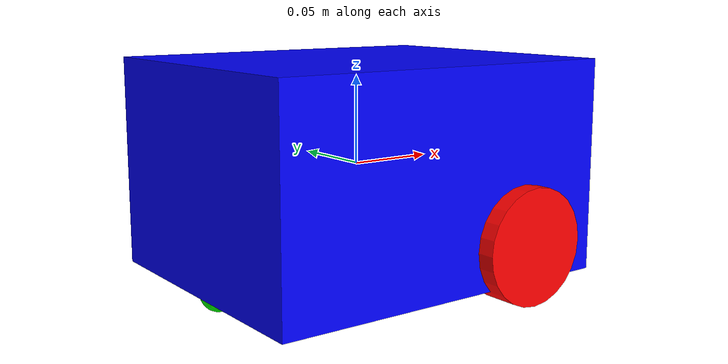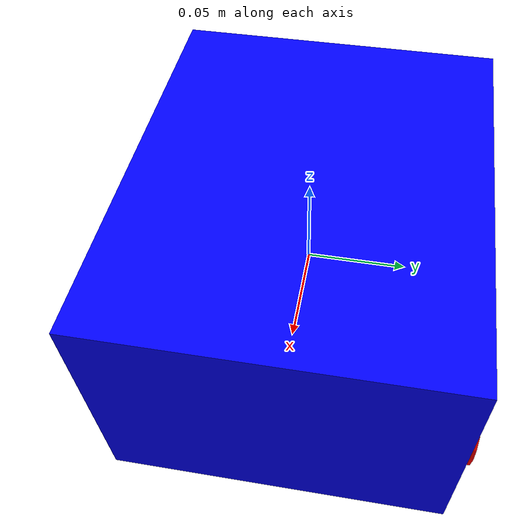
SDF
<?xml version="1.0" ?>
<sdf version="1.10">
    <!-- Osoyoo Robot -->
    <model name='osoyoo' canonical_link='chassis'>

      <!-- Chassis -->
      <link name='chassis'>
        <pose relative_to='__model__'>0 0 0 0 0 0</pose>
        <inertial>
          <mass>1.0</mass>
          <inertia>
            <ixx>0.001</ixx> <ixy>0</ixy> <ixz>0</ixz>
            <iyy>0.001</iyy> <iyz>0</iyz>
            <izz>0.001</izz>
          </inertia>
        </inertial>
        <visual name='visual'>
          <geometry>
            <box><size>0.205 0.167 0.12</size></box>
          </geometry>
          <material>
            <ambient>0.0 0.0 1.0 1</ambient>
            <diffuse>0.0 0.0 1.0 1</diffuse>
            <specular>0.0 0.0 1.0 1</specular>
          </material>
        </visual>
        <collision name='collision'>
          <geometry>
            <box><size>0.205 0.167 0.12</size></box>
          </geometry>
        </collision>
      </link>

      <!-- Left Wheel -->
      <link name='left_wheel'>
        <pose relative_to="chassis">0.05 0.0835 -0.0375 -1.5707 0 0</pose>
        <inertial>
          <mass>0.05</mass>
          <inertia>
            <ixx>1e-4</ixx> <ixy>0</ixy> <ixz>0</ixz>
            <iyy>1e-4</iyy> <iyz>0</iyz>
            <izz>1e-4</izz>
          </inertia>
        </inertial>
        <visual name='visual'>
          <geometry>
            <cylinder>
              <radius>0.0325</radius>
              <length>0.02</length>
            </cylinder>
          </geometry>
          <material>
            <ambient>1.0 0.0 0.0 1</ambient>
            <diffuse>1.0 0.0 0.0 1</diffuse>
            <specular>1.0 0.0 0.0 1</specular>
          </material>
        </visual>
        <collision name='collision'>
          <geometry>
            <cylinder>
              <radius>0.0325</radius>
              <length>0.02</length>
            </cylinder>
          </geometry>
        </collision>
      </link>

      <!-- Right Wheel -->
      <link name='right_wheel'>
        <pose relative_to="chassis">0.05 -0.0835 -0.0375 -1.5707 0 0</pose>
        <inertial>
          <mass>0.05</mass>
          <inertia>
            <ixx>1e-4</ixx> <ixy>0</ixy> <ixz>0</ixz>
            <iyy>1e-4</iyy> <iyz>0</iyz>
            <izz>1e-4</izz>
          </inertia>
        </inertial>
        <visual name='visual'>
          <geometry>
            <cylinder>
              <radius>0.0325</radius>
              <length>0.02</length>
            </cylinder>
          </geometry>
          <material>
            <ambient>1.0 0.0 0.0 1</ambient>
            <diffuse>1.0 0.0 0.0 1</diffuse>
            <specular>1.0 0.0 0.0 1</specular>
          </material>
        </visual>
        <collision name='collision'>
          <geometry>
            <cylinder>
              <radius>0.0325</radius>
              <length>0.02</length>
            </cylinder>
          </geometry>
        </collision>
      </link>

      <!-- Caster -->
      <frame name="caster_frame" attached_to='chassis'>
        <pose>-0.09 0 -0.06 0 0 0</pose>
      </frame>
      <link name='caster'>
        <pose relative_to='caster_frame'/>
        <inertial>
          <mass>0.02</mass>
          <inertia>
            <ixx>1e-5</ixx> <ixy>0</ixy> <ixz>0</ixz>
            <iyy>1e-5</iyy> <iyz>0</iyz>
            <izz>1e-5</izz>
          </inertia>
        </inertial>
        <visual name='visual'>
          <geometry><sphere><radius>0.01</radius></sphere></geometry>
          <material>
            <ambient>0.0 1.0 0.0 1</ambient>
            <diffuse>0.0 1.0 0.0 1</diffuse>
            <specular>0.0 1.0 0.0 1</specular>
          </material>
        </visual>
        <collision name='collision'>
          <geometry><sphere><radius>0.01</radius></sphere></geometry>
        </collision>
      </link>

      <!-- Joints -->
      <joint name='left_wheel_joint' type='revolute'>
        <pose relative_to='left_wheel'/>
        <parent>chassis</parent>
        <child>left_wheel</child>
        <axis>
          <xyz expressed_in='__model__'>0 1 0</xyz>
          <limit><lower>-1e16</lower><upper>1e16</upper></limit>
        </axis>
      </joint>
      <joint name='right_wheel_joint' type='revolute'>
        <pose relative_to='right_wheel'/>
        <parent>chassis</parent>
        <child>right_wheel</child>
        <axis>
          <xyz expressed_in='__model__'>0 1 0</xyz>
          <limit><lower>-1e16</lower><upper>1e16</upper></limit>
        </axis>
      </joint>
      <joint name='caster_wheel' type='ball'>
        <parent>chassis</parent>
        <child>caster</child>
      </joint>

      <!-- DiffDrive plugin -->
      <plugin filename="gz-sim-diff-drive-system" name="gz::sim::systems::DiffDrive">
        <left_joint>left_wheel_joint</left_joint>
        <right_joint>right_wheel_joint</right_joint>
        <wheel_separation>0.147</wheel_separation>
        <wheel_radius>0.0325</wheel_radius>
        <odom_topic>odom</odom_topic>
        <odom_publish_frequency>10</odom_publish_frequency>
        <topic>cmd_vel</topic>
        <tf_topic>tf</tf_topic>
        <odom_frame>odom</odom_frame>
        <robot_base_frame>chassis</robot_base_frame>

      </plugin>

      <plugin
        filename="gz-sim-odometry-publisher-system"
        name = "gz::sim::systems::OdometryPublisher">
      </plugin>

    </model>
</sdf>
